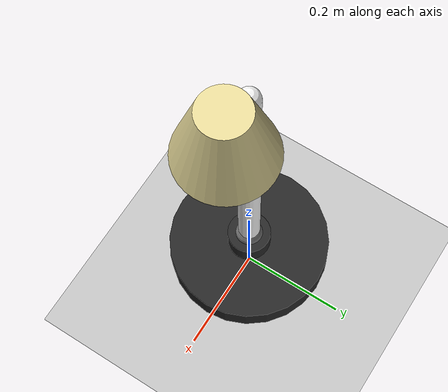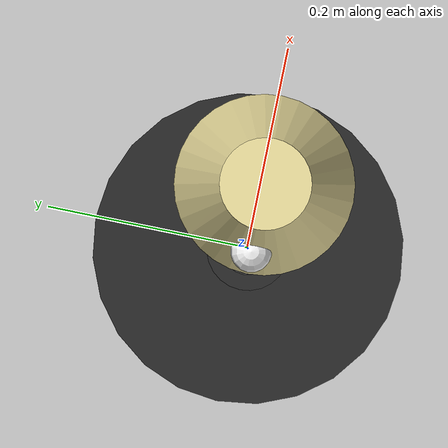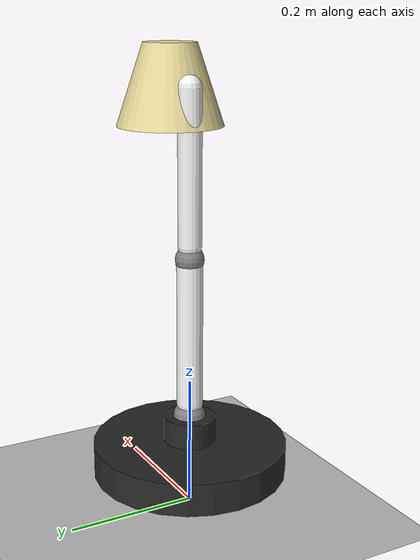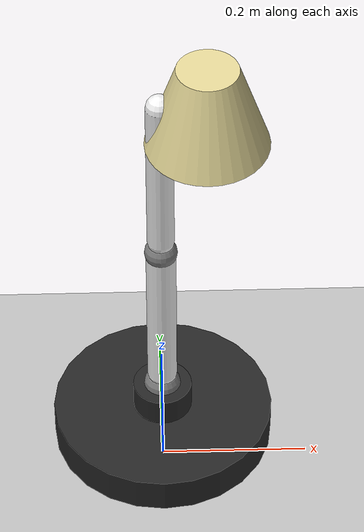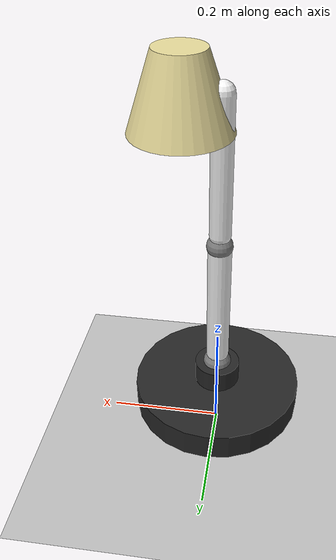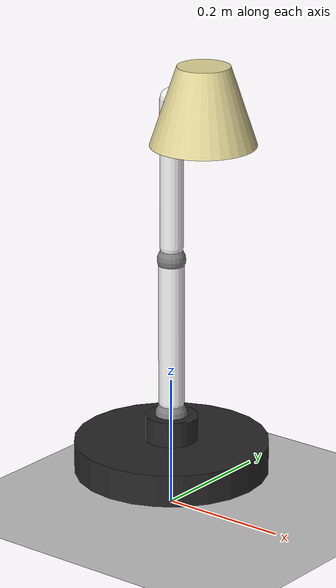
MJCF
<mujoco model="luxo_lamp">
  <compiler angle="radian" coordinate="local"/>

  <option timestep="0.002" gravity="0 0 -9.81" iterations="50" solver="Newton">
    <flag warmstart="enable"/>
  </option>

  <visual>
    <global offwidth="800" offheight="600"/>
  </visual>

  <asset>
    <texture type="skybox" builtin="gradient" rgb1="0.9 0.9 0.95" rgb2="0.5 0.6 0.7" width="512" height="512"/>
    <mesh name="shade_mesh" file="shade.obj"/>
    <material name="mat_base" rgba="0.15 0.15 0.15 1" specular="0.3" shininess="0.3"/>
    <material name="mat_arm"  rgba="0.95 0.95 0.95 1" specular="0.2" shininess="0.2"/>
    <material name="mat_joint" rgba="0.5 0.5 0.5 1" specular="0.4" shininess="0.4"/>
    <material name="mat_head" rgba="0.9 0.85 0.6 1" specular="0.5" shininess="0.3"/>
    <material name="mat_bulb" rgba="1.0 1.0 0.8 1" emission="0.5" specular="0.1"/>
    <material name="mat_floor" rgba="0.75 0.75 0.75 1" specular="0.1" shininess="0.1"/>
  </asset>

  <default>
    <joint damping="0.1" armature="0.01" limited="true"/>
    <geom contype="1" conaffinity="1" friction="0.8 0.02 0.02" density="800"/>
    <motor ctrllimited="true" ctrlrange="-100 100"/>
    <position kp="100" kv="10"/>
  </default>

  <worldbody>
    <light directional="true" diffuse="0.6 0.6 0.6" specular="0.2 0.2 0.2" pos="2 2 4" dir="-0.3 -0.3 -1"/>
    <geom name="floor" type="plane" size="10 10 0.1" material="mat_floor"/>

    <!-- Base: flat circular lamp base. -->
    <body name="base" pos="0 0 0.08">
      <freejoint name="base_free"/>
      <geom name="base_geom" type="cylinder" size="0.15 0.025" material="mat_base" mass="2.0"/>
      <!-- Small decorative neck where the arm attaches. -->
      <geom name="base_neck" type="cylinder" size="0.04 0.02" pos="0 0 0.045" material="mat_base" mass="0"/>

      <!-- Base yaw link: sits on top of the base. -->
      <body name="base_yaw_link" pos="0 0 0.065">
        <inertial pos="0 0 0" mass="0.001" diaginertia="1e-6 1e-6 1e-6"/>
        <joint name="base_yaw" type="hinge" axis="0 0 1" pos="0 0 0" range="-3.1416 3.1416"/>

        <!-- Lower arm: mostly vertical. -->
        <body name="lower_arm" pos="0 0 0">
          <geom name="lower_arm_geom" type="capsule" fromto="0 0 0.02 0 0 0.25" size="0.02" material="mat_arm" mass="0.6"/>
          <geom name="hip_hub" type="sphere" size="0.025" pos="0 0 0" material="mat_joint"/>

          <!-- Hip pitch: swing the lower arm forward/backward -->
          <joint name="hip_pitch" type="hinge" axis="0 1 0" pos="0 0 0" range="-1.5708 1.5708"/>

          <!-- Upper arm -->
          <body name="upper_arm" pos="0 0 0.25">
            <geom name="upper_arm_geom" type="capsule" fromto="0 0 0.02 0 0 0.25" size="0.018" material="mat_arm" mass="0.4"/>
            <geom name="elbow_hub" type="sphere" size="0.022" pos="0 0 0" material="mat_joint"/>

            <!-- Elbow pitch: fold/extend the arm -->
            <joint name="elbow_pitch" type="hinge" axis="0 1 0" pos="0 0 0" range="-2.7925 0.1745"/>

            <!-- Head mount / lampshade -->
            <body name="head_yaw_body" pos="0 0 0.25">
              <inertial pos="0 0 0" mass="0.001" diaginertia="1e-6 1e-6 1e-6"/>
              <!-- Head pitch: nod up/down -->
              <joint name="head_pitch" type="hinge" axis="0 1 0" pos="0 0 0" range="-1.5708 1.5708"/>

              <body name="head" pos="0 0 0">
                <!-- Head yaw: look left/right -->
                <joint name="head_yaw" type="hinge" axis="0 0 1" pos="0 0 0" range="-2.0 2.0"/>

                <geom name="shade_geom" type="mesh" mesh="shade_mesh" pos="0.06 0 -0.06" material="mat_head" density="100"/>
                <!-- Bulb sits inside the shade, around mid-depth -->
                <geom name="bulb_geom" type="sphere" size="0.035" pos="0.06 0 0.0" material="mat_bulb" density="100"/>

                <!-- Camera in the head, looking out of the wide opening (along local -z) -->
                <camera name="head_camera" mode="fixed" pos="0.06 0 -0.04" euler="0 0 0" fovy="70"/>
              </body>
            </body>
          </body>
        </body>
      </body>
    </body>
  </worldbody>

  <!-- Avoid self-collision at the joint hubs (parent/child adjacent links) -->
  <contact>
    <exclude body1="base" body2="lower_arm"/>
    <exclude body1="lower_arm" body2="upper_arm"/>
    <exclude body1="upper_arm" body2="head_yaw_body"/>
    <exclude body1="head_yaw_body" body2="head"/>
  </contact>

  <actuator>
    <motor joint="base_yaw"  name="act_base_yaw"  ctrlrange="-5 5"/>
    <motor joint="hip_pitch" name="act_hip_pitch" ctrlrange="-6 6"/>
    <motor joint="elbow_pitch" name="act_elbow_pitch" ctrlrange="-6 6"/>
    <motor joint="head_pitch" name="act_head_pitch" ctrlrange="-10 10"/>
    <motor joint="head_yaw"  name="act_head_yaw"  ctrlrange="-5 5"/>
  </actuator>

  <!-- Home pose: standing desk lamp.
       Lower arm vertical, upper arm bends forward, shade looks down. -->
  <keyframe>
    <!-- Base z=0.05 puts the flat base just above the floor. -->
    <key name="home" qpos="0 0 0.05 1 0 0 0  0  0.0  -1.3  -0.8  0"/>
  </keyframe>
</mujoco>
